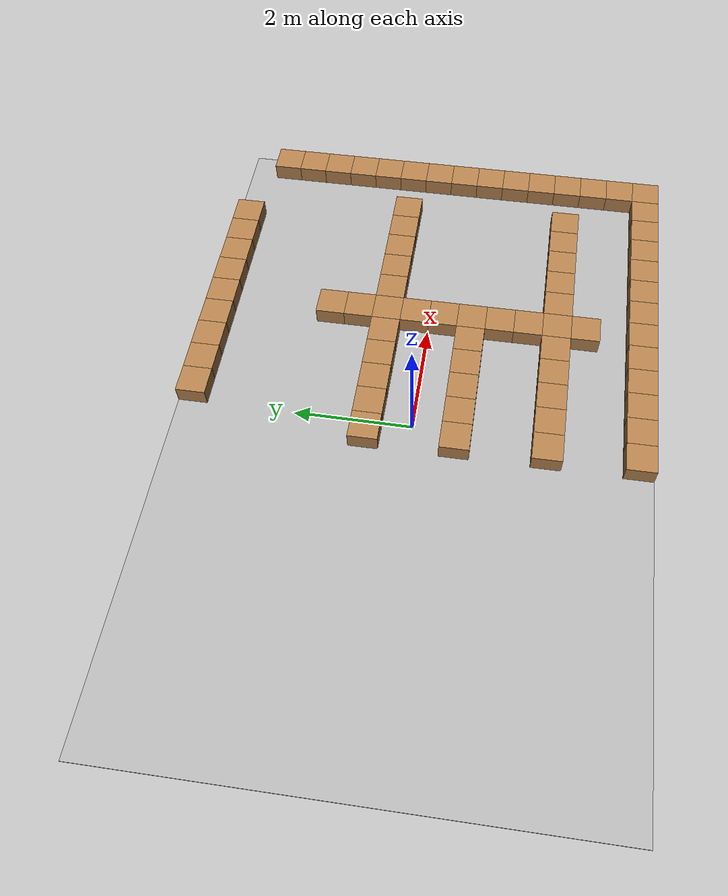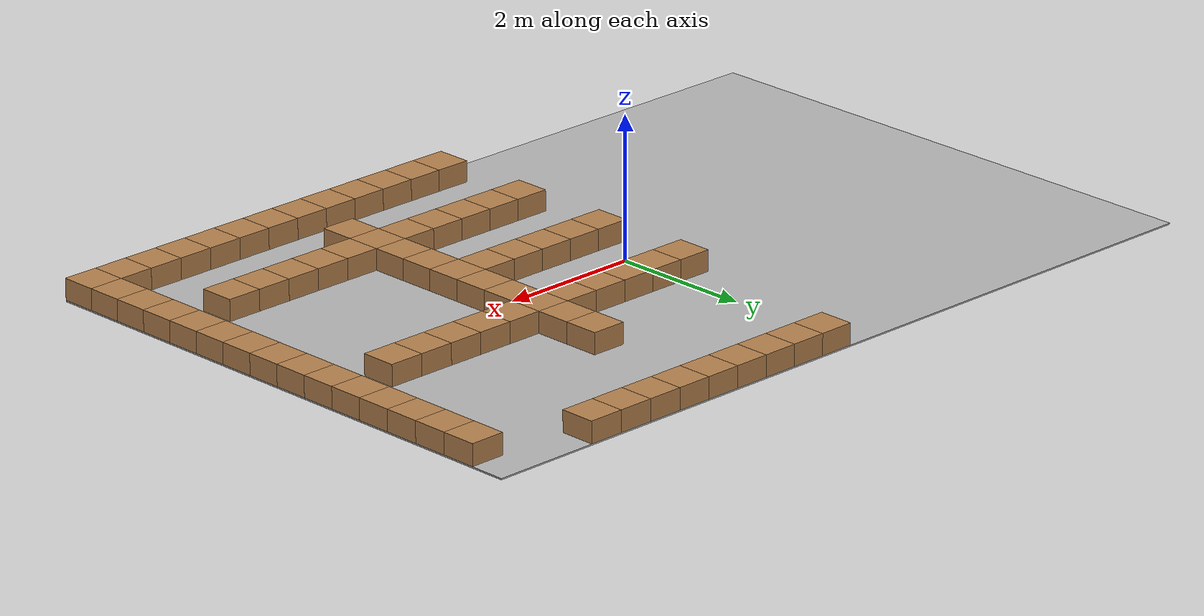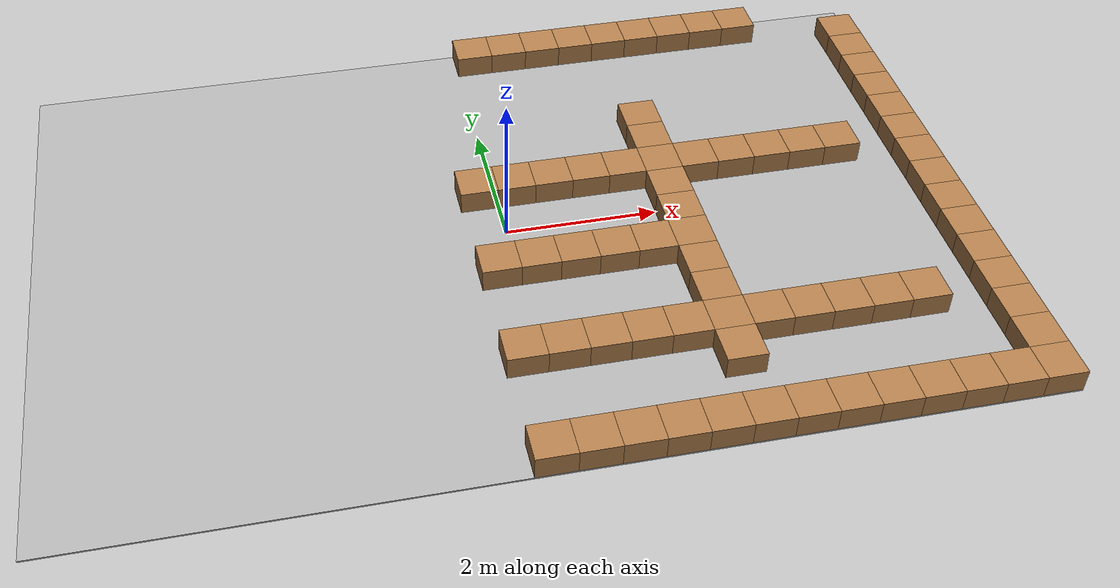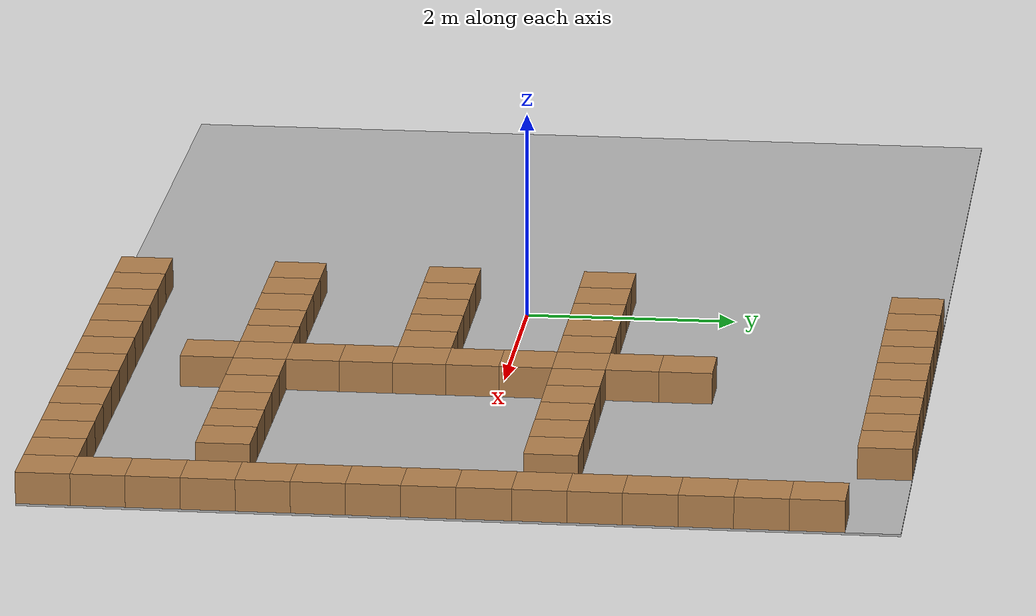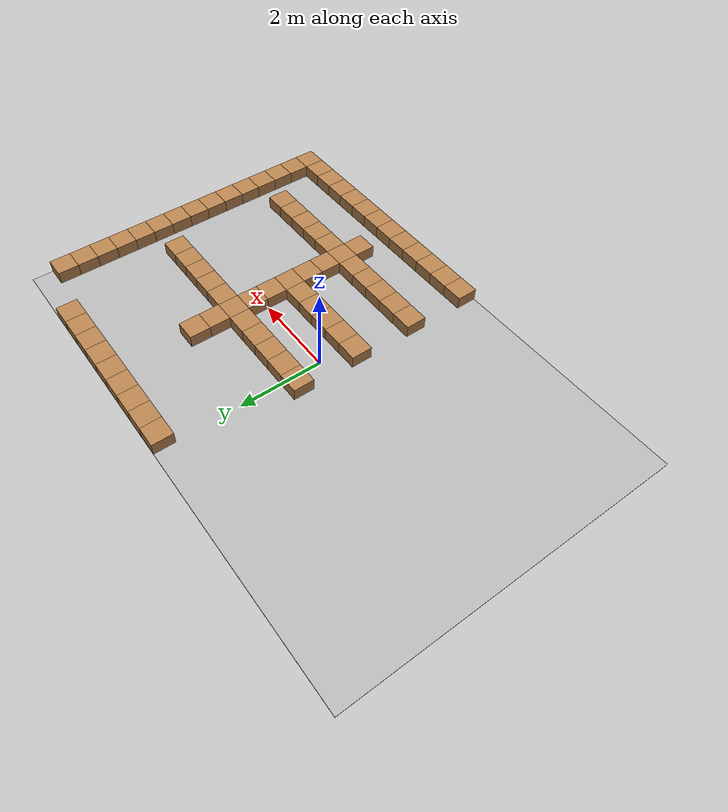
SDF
<sdf version="1.7">
 <world name="default">
  <model name="floor">
   <pose>0 0 -0.01 0 0 0</pose>
   <static>true</static>
   <link name="link">
    <collision name="col"><geometry><box><size>12.0 8.0 0.02</size></box></geometry></collision>
    <visual name="vis">
     <geometry><box><size>12.0 8.0 0.02</size></box></geometry>
     <material>
      <ambient>0.30 0.30 0.30 1</ambient>
      <diffuse>0.70 0.70 0.70 1</diffuse>
      <specular>0.10 0.10 0.10 1</specular>
     </material>
    </visual>
   </link>
  </model>
  <model name="tile_0_12">
   <pose>0.25 3.75 0.15 0 0 0</pose>
   <static>true</static>
   <link name="link">
    <collision name="col"><geometry><box><size>0.5 0.5 0.3</size></box></geometry></collision>
    <visual name="vis">
     <geometry><box><size>0.5 0.5 0.3</size></box></geometry>
     <material>
      <ambient>0.30 0.20 0.10 1</ambient>
      <diffuse>0.70 0.50 0.30 1</diffuse>
      <specular>0.10 0.10 0.10 1</specular>
     </material>
    </visual>
   </link>
  </model>
  <model name="tile_0_13">
   <pose>0.75 3.75 0.15 0 0 0</pose>
   <static>true</static>
   <link name="link">
    <collision name="col"><geometry><box><size>0.5 0.5 0.3</size></box></geometry></collision>
    <visual name="vis">
     <geometry><box><size>0.5 0.5 0.3</size></box></geometry>
     <material>
      <ambient>0.30 0.20 0.10 1</ambient>
      <diffuse>0.70 0.50 0.30 1</diffuse>
      <specular>0.10 0.10 0.10 1</specular>
     </material>
    </visual>
   </link>
  </model>
  <model name="tile_0_14">
   <pose>1.25 3.75 0.15 0 0 0</pose>
   <static>true</static>
   <link name="link">
    <collision name="col"><geometry><box><size>0.5 0.5 0.3</size></box></geometry></collision>
    <visual name="vis">
     <geometry><box><size>0.5 0.5 0.3</size></box></geometry>
     <material>
      <ambient>0.30 0.20 0.10 1</ambient>
      <diffuse>0.70 0.50 0.30 1</diffuse>
      <specular>0.10 0.10 0.10 1</specular>
     </material>
    </visual>
   </link>
  </model>
  <model name="tile_0_15">
   <pose>1.75 3.75 0.15 0 0 0</pose>
   <static>true</static>
   <link name="link">
    <collision name="col"><geometry><box><size>0.5 0.5 0.3</size></box></geometry></collision>
    <visual name="vis">
     <geometry><box><size>0.5 0.5 0.3</size></box></geometry>
     <material>
      <ambient>0.30 0.20 0.10 1</ambient>
      <diffuse>0.70 0.50 0.30 1</diffuse>
      <specular>0.10 0.10 0.10 1</specular>
     </material>
    </visual>
   </link>
  </model>
  <model name="tile_0_16">
   <pose>2.25 3.75 0.15 0 0 0</pose>
   <static>true</static>
   <link name="link">
    <collision name="col"><geometry><box><size>0.5 0.5 0.3</size></box></geometry></collision>
    <visual name="vis">
     <geometry><box><size>0.5 0.5 0.3</size></box></geometry>
     <material>
      <ambient>0.30 0.20 0.10 1</ambient>
      <diffuse>0.70 0.50 0.30 1</diffuse>
      <specular>0.10 0.10 0.10 1</specular>
     </material>
    </visual>
   </link>
  </model>
  <model name="tile_0_17">
   <pose>2.75 3.75 0.15 0 0 0</pose>
   <static>true</static>
   <link name="link">
    <collision name="col"><geometry><box><size>0.5 0.5 0.3</size></box></geometry></collision>
    <visual name="vis">
     <geometry><box><size>0.5 0.5 0.3</size></box></geometry>
     <material>
      <ambient>0.30 0.20 0.10 1</ambient>
      <diffuse>0.70 0.50 0.30 1</diffuse>
      <specular>0.10 0.10 0.10 1</specular>
     </material>
    </visual>
   </link>
  </model>
  <model name="tile_0_18">
   <pose>3.25 3.75 0.15 0 0 0</pose>
   <static>true</static>
   <link name="link">
    <collision name="col"><geometry><box><size>0.5 0.5 0.3</size></box></geometry></collision>
    <visual name="vis">
     <geometry><box><size>0.5 0.5 0.3</size></box></geometry>
     <material>
      <ambient>0.30 0.20 0.10 1</ambient>
      <diffuse>0.70 0.50 0.30 1</diffuse>
      <specular>0.10 0.10 0.10 1</specular>
     </material>
    </visual>
   </link>
  </model>
  <model name="tile_0_19">
   <pose>3.75 3.75 0.15 0 0 0</pose>
   <static>true</static>
   <link name="link">
    <collision name="col"><geometry><box><size>0.5 0.5 0.3</size></box></geometry></collision>
    <visual name="vis">
     <geometry><box><size>0.5 0.5 0.3</size></box></geometry>
     <material>
      <ambient>0.30 0.20 0.10 1</ambient>
      <diffuse>0.70 0.50 0.30 1</diffuse>
      <specular>0.10 0.10 0.10 1</specular>
     </material>
    </visual>
   </link>
  </model>
  <model name="tile_0_20">
   <pose>4.25 3.75 0.15 0 0 0</pose>
   <static>true</static>
   <link name="link">
    <collision name="col"><geometry><box><size>0.5 0.5 0.3</size></box></geometry></collision>
    <visual name="vis">
     <geometry><box><size>0.5 0.5 0.3</size></box></geometry>
     <material>
      <ambient>0.30 0.20 0.10 1</ambient>
      <diffuse>0.70 0.50 0.30 1</diffuse>
      <specular>0.10 0.10 0.10 1</specular>
     </material>
    </visual>
   </link>
  </model>
  <model name="tile_1_23">
   <pose>5.75 3.25 0.15 0 0 0</pose>
   <static>true</static>
   <link name="link">
    <collision name="col"><geometry><box><size>0.5 0.5 0.3</size></box></geometry></collision>
    <visual name="vis">
     <geometry><box><size>0.5 0.5 0.3</size></box></geometry>
     <material>
      <ambient>0.30 0.20 0.10 1</ambient>
      <diffuse>0.70 0.50 0.30 1</diffuse>
      <specular>0.10 0.10 0.10 1</specular>
     </material>
    </visual>
   </link>
  </model>
  <model name="tile_2_23">
   <pose>5.75 2.75 0.15 0 0 0</pose>
   <static>true</static>
   <link name="link">
    <collision name="col"><geometry><box><size>0.5 0.5 0.3</size></box></geometry></collision>
    <visual name="vis">
     <geometry><box><size>0.5 0.5 0.3</size></box></geometry>
     <material>
      <ambient>0.30 0.20 0.10 1</ambient>
      <diffuse>0.70 0.50 0.30 1</diffuse>
      <specular>0.10 0.10 0.10 1</specular>
     </material>
    </visual>
   </link>
  </model>
  <model name="tile_3_23">
   <pose>5.75 2.25 0.15 0 0 0</pose>
   <static>true</static>
   <link name="link">
    <collision name="col"><geometry><box><size>0.5 0.5 0.3</size></box></geometry></collision>
    <visual name="vis">
     <geometry><box><size>0.5 0.5 0.3</size></box></geometry>
     <material>
      <ambient>0.30 0.20 0.10 1</ambient>
      <diffuse>0.70 0.50 0.30 1</diffuse>
      <specular>0.10 0.10 0.10 1</specular>
     </material>
    </visual>
   </link>
  </model>
  <model name="tile_4_16">
   <pose>2.25 1.75 0.15 0 0 0</pose>
   <static>true</static>
   <link name="link">
    <collision name="col"><geometry><box><size>0.5 0.5 0.3</size></box></geometry></collision>
    <visual name="vis">
     <geometry><box><size>0.5 0.5 0.3</size></box></geometry>
     <material>
      <ambient>0.30 0.20 0.10 1</ambient>
      <diffuse>0.70 0.50 0.30 1</diffuse>
      <specular>0.10 0.10 0.10 1</specular>
     </material>
    </visual>
   </link>
  </model>
  <model name="tile_4_23">
   <pose>5.75 1.75 0.15 0 0 0</pose>
   <static>true</static>
   <link name="link">
    <collision name="col"><geometry><box><size>0.5 0.5 0.3</size></box></geometry></collision>
    <visual name="vis">
     <geometry><box><size>0.5 0.5 0.3</size></box></geometry>
     <material>
      <ambient>0.30 0.20 0.10 1</ambient>
      <diffuse>0.70 0.50 0.30 1</diffuse>
      <specular>0.10 0.10 0.10 1</specular>
     </material>
    </visual>
   </link>
  </model>
  <model name="tile_5_16">
   <pose>2.25 1.25 0.15 0 0 0</pose>
   <static>true</static>
   <link name="link">
    <collision name="col"><geometry><box><size>0.5 0.5 0.3</size></box></geometry></collision>
    <visual name="vis">
     <geometry><box><size>0.5 0.5 0.3</size></box></geometry>
     <material>
      <ambient>0.30 0.20 0.10 1</ambient>
      <diffuse>0.70 0.50 0.30 1</diffuse>
      <specular>0.10 0.10 0.10 1</specular>
     </material>
    </visual>
   </link>
  </model>
  <model name="tile_5_23">
   <pose>5.75 1.25 0.15 0 0 0</pose>
   <static>true</static>
   <link name="link">
    <collision name="col"><geometry><box><size>0.5 0.5 0.3</size></box></geometry></collision>
    <visual name="vis">
     <geometry><box><size>0.5 0.5 0.3</size></box></geometry>
     <material>
      <ambient>0.30 0.20 0.10 1</ambient>
      <diffuse>0.70 0.50 0.30 1</diffuse>
      <specular>0.10 0.10 0.10 1</specular>
     </material>
    </visual>
   </link>
  </model>
  <model name="tile_6_11">
   <pose>-0.25 0.75 0.15 0 0 0</pose>
   <static>true</static>
   <link name="link">
    <collision name="col"><geometry><box><size>0.5 0.5 0.3</size></box></geometry></collision>
    <visual name="vis">
     <geometry><box><size>0.5 0.5 0.3</size></box></geometry>
     <material>
      <ambient>0.30 0.20 0.10 1</ambient>
      <diffuse>0.70 0.50 0.30 1</diffuse>
      <specular>0.10 0.10 0.10 1</specular>
     </material>
    </visual>
   </link>
  </model>
  <model name="tile_6_12">
   <pose>0.25 0.75 0.15 0 0 0</pose>
   <static>true</static>
   <link name="link">
    <collision name="col"><geometry><box><size>0.5 0.5 0.3</size></box></geometry></collision>
    <visual name="vis">
     <geometry><box><size>0.5 0.5 0.3</size></box></geometry>
     <material>
      <ambient>0.30 0.20 0.10 1</ambient>
      <diffuse>0.70 0.50 0.30 1</diffuse>
      <specular>0.10 0.10 0.10 1</specular>
     </material>
    </visual>
   </link>
  </model>
  <model name="tile_6_13">
   <pose>0.75 0.75 0.15 0 0 0</pose>
   <static>true</static>
   <link name="link">
    <collision name="col"><geometry><box><size>0.5 0.5 0.3</size></box></geometry></collision>
    <visual name="vis">
     <geometry><box><size>0.5 0.5 0.3</size></box></geometry>
     <material>
      <ambient>0.30 0.20 0.10 1</ambient>
      <diffuse>0.70 0.50 0.30 1</diffuse>
      <specular>0.10 0.10 0.10 1</specular>
     </material>
    </visual>
   </link>
  </model>
  <model name="tile_6_14">
   <pose>1.25 0.75 0.15 0 0 0</pose>
   <static>true</static>
   <link name="link">
    <collision name="col"><geometry><box><size>0.5 0.5 0.3</size></box></geometry></collision>
    <visual name="vis">
     <geometry><box><size>0.5 0.5 0.3</size></box></geometry>
     <material>
      <ambient>0.30 0.20 0.10 1</ambient>
      <diffuse>0.70 0.50 0.30 1</diffuse>
      <specular>0.10 0.10 0.10 1</specular>
     </material>
    </visual>
   </link>
  </model>
  <model name="tile_6_15">
   <pose>1.75 0.75 0.15 0 0 0</pose>
   <static>true</static>
   <link name="link">
    <collision name="col"><geometry><box><size>0.5 0.5 0.3</size></box></geometry></collision>
    <visual name="vis">
     <geometry><box><size>0.5 0.5 0.3</size></box></geometry>
     <material>
      <ambient>0.30 0.20 0.10 1</ambient>
      <diffuse>0.70 0.50 0.30 1</diffuse>
      <specular>0.10 0.10 0.10 1</specular>
     </material>
    </visual>
   </link>
  </model>
  <model name="tile_6_16">
   <pose>2.25 0.75 0.15 0 0 0</pose>
   <static>true</static>
   <link name="link">
    <collision name="col"><geometry><box><size>0.5 0.5 0.3</size></box></geometry></collision>
    <visual name="vis">
     <geometry><box><size>0.5 0.5 0.3</size></box></geometry>
     <material>
      <ambient>0.30 0.20 0.10 1</ambient>
      <diffuse>0.70 0.50 0.30 1</diffuse>
      <specular>0.10 0.10 0.10 1</specular>
     </material>
    </visual>
   </link>
  </model>
  <model name="tile_6_17">
   <pose>2.75 0.75 0.15 0 0 0</pose>
   <static>true</static>
   <link name="link">
    <collision name="col"><geometry><box><size>0.5 0.5 0.3</size></box></geometry></collision>
    <visual name="vis">
     <geometry><box><size>0.5 0.5 0.3</size></box></geometry>
     <material>
      <ambient>0.30 0.20 0.10 1</ambient>
      <diffuse>0.70 0.50 0.30 1</diffuse>
      <specular>0.10 0.10 0.10 1</specular>
     </material>
    </visual>
   </link>
  </model>
  <model name="tile_6_18">
   <pose>3.25 0.75 0.15 0 0 0</pose>
   <static>true</static>
   <link name="link">
    <collision name="col"><geometry><box><size>0.5 0.5 0.3</size></box></geometry></collision>
    <visual name="vis">
     <geometry><box><size>0.5 0.5 0.3</size></box></geometry>
     <material>
      <ambient>0.30 0.20 0.10 1</ambient>
      <diffuse>0.70 0.50 0.30 1</diffuse>
      <specular>0.10 0.10 0.10 1</specular>
     </material>
    </visual>
   </link>
  </model>
  <model name="tile_6_19">
   <pose>3.75 0.75 0.15 0 0 0</pose>
   <static>true</static>
   <link name="link">
    <collision name="col"><geometry><box><size>0.5 0.5 0.3</size></box></geometry></collision>
    <visual name="vis">
     <geometry><box><size>0.5 0.5 0.3</size></box></geometry>
     <material>
      <ambient>0.30 0.20 0.10 1</ambient>
      <diffuse>0.70 0.50 0.30 1</diffuse>
      <specular>0.10 0.10 0.10 1</specular>
     </material>
    </visual>
   </link>
  </model>
  <model name="tile_6_20">
   <pose>4.25 0.75 0.15 0 0 0</pose>
   <static>true</static>
   <link name="link">
    <collision name="col"><geometry><box><size>0.5 0.5 0.3</size></box></geometry></collision>
    <visual name="vis">
     <geometry><box><size>0.5 0.5 0.3</size></box></geometry>
     <material>
      <ambient>0.30 0.20 0.10 1</ambient>
      <diffuse>0.70 0.50 0.30 1</diffuse>
      <specular>0.10 0.10 0.10 1</specular>
     </material>
    </visual>
   </link>
  </model>
  <model name="tile_6_21">
   <pose>4.75 0.75 0.15 0 0 0</pose>
   <static>true</static>
   <link name="link">
    <collision name="col"><geometry><box><size>0.5 0.5 0.3</size></box></geometry></collision>
    <visual name="vis">
     <geometry><box><size>0.5 0.5 0.3</size></box></geometry>
     <material>
      <ambient>0.30 0.20 0.10 1</ambient>
      <diffuse>0.70 0.50 0.30 1</diffuse>
      <specular>0.10 0.10 0.10 1</specular>
     </material>
    </visual>
   </link>
  </model>
  <model name="tile_6_23">
   <pose>5.75 0.75 0.15 0 0 0</pose>
   <static>true</static>
   <link name="link">
    <collision name="col"><geometry><box><size>0.5 0.5 0.3</size></box></geometry></collision>
    <visual name="vis">
     <geometry><box><size>0.5 0.5 0.3</size></box></geometry>
     <material>
      <ambient>0.30 0.20 0.10 1</ambient>
      <diffuse>0.70 0.50 0.30 1</diffuse>
      <specular>0.10 0.10 0.10 1</specular>
     </material>
    </visual>
   </link>
  </model>
  <model name="tile_7_16">
   <pose>2.25 0.25 0.15 0 0 0</pose>
   <static>true</static>
   <link name="link">
    <collision name="col"><geometry><box><size>0.5 0.5 0.3</size></box></geometry></collision>
    <visual name="vis">
     <geometry><box><size>0.5 0.5 0.3</size></box></geometry>
     <material>
      <ambient>0.30 0.20 0.10 1</ambient>
      <diffuse>0.70 0.50 0.30 1</diffuse>
      <specular>0.10 0.10 0.10 1</specular>
     </material>
    </visual>
   </link>
  </model>
  <model name="tile_7_23">
   <pose>5.75 0.25 0.15 0 0 0</pose>
   <static>true</static>
   <link name="link">
    <collision name="col"><geometry><box><size>0.5 0.5 0.3</size></box></geometry></collision>
    <visual name="vis">
     <geometry><box><size>0.5 0.5 0.3</size></box></geometry>
     <material>
      <ambient>0.30 0.20 0.10 1</ambient>
      <diffuse>0.70 0.50 0.30 1</diffuse>
      <specular>0.10 0.10 0.10 1</specular>
     </material>
    </visual>
   </link>
  </model>
  <model name="tile_8_16">
   <pose>2.25 -0.25 0.15 0 0 0</pose>
   <static>true</static>
   <link name="link">
    <collision name="col"><geometry><box><size>0.5 0.5 0.3</size></box></geometry></collision>
    <visual name="vis">
     <geometry><box><size>0.5 0.5 0.3</size></box></geometry>
     <material>
      <ambient>0.30 0.20 0.10 1</ambient>
      <diffuse>0.70 0.50 0.30 1</diffuse>
      <specular>0.10 0.10 0.10 1</specular>
     </material>
    </visual>
   </link>
  </model>
  <model name="tile_8_23">
   <pose>5.75 -0.25 0.15 0 0 0</pose>
   <static>true</static>
   <link name="link">
    <collision name="col"><geometry><box><size>0.5 0.5 0.3</size></box></geometry></collision>
    <visual name="vis">
     <geometry><box><size>0.5 0.5 0.3</size></box></geometry>
     <material>
      <ambient>0.30 0.20 0.10 1</ambient>
      <diffuse>0.70 0.50 0.30 1</diffuse>
      <specular>0.10 0.10 0.10 1</specular>
     </material>
    </visual>
   </link>
  </model>
  <model name="tile_9_11">
   <pose>-0.25 -0.75 0.15 0 0 0</pose>
   <static>true</static>
   <link name="link">
    <collision name="col"><geometry><box><size>0.5 0.5 0.3</size></box></geometry></collision>
    <visual name="vis">
     <geometry><box><size>0.5 0.5 0.3</size></box></geometry>
     <material>
      <ambient>0.30 0.20 0.10 1</ambient>
      <diffuse>0.70 0.50 0.30 1</diffuse>
      <specular>0.10 0.10 0.10 1</specular>
     </material>
    </visual>
   </link>
  </model>
  <model name="tile_9_12">
   <pose>0.25 -0.75 0.15 0 0 0</pose>
   <static>true</static>
   <link name="link">
    <collision name="col"><geometry><box><size>0.5 0.5 0.3</size></box></geometry></collision>
    <visual name="vis">
     <geometry><box><size>0.5 0.5 0.3</size></box></geometry>
     <material>
      <ambient>0.30 0.20 0.10 1</ambient>
      <diffuse>0.70 0.50 0.30 1</diffuse>
      <specular>0.10 0.10 0.10 1</specular>
     </material>
    </visual>
   </link>
  </model>
  <model name="tile_9_13">
   <pose>0.75 -0.75 0.15 0 0 0</pose>
   <static>true</static>
   <link name="link">
    <collision name="col"><geometry><box><size>0.5 0.5 0.3</size></box></geometry></collision>
    <visual name="vis">
     <geometry><box><size>0.5 0.5 0.3</size></box></geometry>
     <material>
      <ambient>0.30 0.20 0.10 1</ambient>
      <diffuse>0.70 0.50 0.30 1</diffuse>
      <specular>0.10 0.10 0.10 1</specular>
     </material>
    </visual>
   </link>
  </model>
  <model name="tile_9_14">
   <pose>1.25 -0.75 0.15 0 0 0</pose>
   <static>true</static>
   <link name="link">
    <collision name="col"><geometry><box><size>0.5 0.5 0.3</size></box></geometry></collision>
    <visual name="vis">
     <geometry><box><size>0.5 0.5 0.3</size></box></geometry>
     <material>
      <ambient>0.30 0.20 0.10 1</ambient>
      <diffuse>0.70 0.50 0.30 1</diffuse>
      <specular>0.10 0.10 0.10 1</specular>
     </material>
    </visual>
   </link>
  </model>
  <model name="tile_9_15">
   <pose>1.75 -0.75 0.15 0 0 0</pose>
   <static>true</static>
   <link name="link">
    <collision name="col"><geometry><box><size>0.5 0.5 0.3</size></box></geometry></collision>
    <visual name="vis">
     <geometry><box><size>0.5 0.5 0.3</size></box></geometry>
     <material>
      <ambient>0.30 0.20 0.10 1</ambient>
      <diffuse>0.70 0.50 0.30 1</diffuse>
      <specular>0.10 0.10 0.10 1</specular>
     </material>
    </visual>
   </link>
  </model>
  <model name="tile_9_16">
   <pose>2.25 -0.75 0.15 0 0 0</pose>
   <static>true</static>
   <link name="link">
    <collision name="col"><geometry><box><size>0.5 0.5 0.3</size></box></geometry></collision>
    <visual name="vis">
     <geometry><box><size>0.5 0.5 0.3</size></box></geometry>
     <material>
      <ambient>0.30 0.20 0.10 1</ambient>
      <diffuse>0.70 0.50 0.30 1</diffuse>
      <specular>0.10 0.10 0.10 1</specular>
     </material>
    </visual>
   </link>
  </model>
  <model name="tile_9_23">
   <pose>5.75 -0.75 0.15 0 0 0</pose>
   <static>true</static>
   <link name="link">
    <collision name="col"><geometry><box><size>0.5 0.5 0.3</size></box></geometry></collision>
    <visual name="vis">
     <geometry><box><size>0.5 0.5 0.3</size></box></geometry>
     <material>
      <ambient>0.30 0.20 0.10 1</ambient>
      <diffuse>0.70 0.50 0.30 1</diffuse>
      <specular>0.10 0.10 0.10 1</specular>
     </material>
    </visual>
   </link>
  </model>
  <model name="tile_10_16">
   <pose>2.25 -1.25 0.15 0 0 0</pose>
   <static>true</static>
   <link name="link">
    <collision name="col"><geometry><box><size>0.5 0.5 0.3</size></box></geometry></collision>
    <visual name="vis">
     <geometry><box><size>0.5 0.5 0.3</size></box></geometry>
     <material>
      <ambient>0.30 0.20 0.10 1</ambient>
      <diffuse>0.70 0.50 0.30 1</diffuse>
      <specular>0.10 0.10 0.10 1</specular>
     </material>
    </visual>
   </link>
  </model>
  <model name="tile_10_23">
   <pose>5.75 -1.25 0.15 0 0 0</pose>
   <static>true</static>
   <link name="link">
    <collision name="col"><geometry><box><size>0.5 0.5 0.3</size></box></geometry></collision>
    <visual name="vis">
     <geometry><box><size>0.5 0.5 0.3</size></box></geometry>
     <material>
      <ambient>0.30 0.20 0.10 1</ambient>
      <diffuse>0.70 0.50 0.30 1</diffuse>
      <specular>0.10 0.10 0.10 1</specular>
     </material>
    </visual>
   </link>
  </model>
  <model name="tile_11_16">
   <pose>2.25 -1.75 0.15 0 0 0</pose>
   <static>true</static>
   <link name="link">
    <collision name="col"><geometry><box><size>0.5 0.5 0.3</size></box></geometry></collision>
    <visual name="vis">
     <geometry><box><size>0.5 0.5 0.3</size></box></geometry>
     <material>
      <ambient>0.30 0.20 0.10 1</ambient>
      <diffuse>0.70 0.50 0.30 1</diffuse>
      <specular>0.10 0.10 0.10 1</specular>
     </material>
    </visual>
   </link>
  </model>
  <model name="tile_11_23">
   <pose>5.75 -1.75 0.15 0 0 0</pose>
   <static>true</static>
   <link name="link">
    <collision name="col"><geometry><box><size>0.5 0.5 0.3</size></box></geometry></collision>
    <visual name="vis">
     <geometry><box><size>0.5 0.5 0.3</size></box></geometry>
     <material>
      <ambient>0.30 0.20 0.10 1</ambient>
      <diffuse>0.70 0.50 0.30 1</diffuse>
      <specular>0.10 0.10 0.10 1</specular>
     </material>
    </visual>
   </link>
  </model>
  <model name="tile_12_11">
   <pose>-0.25 -2.25 0.15 0 0 0</pose>
   <static>true</static>
   <link name="link">
    <collision name="col"><geometry><box><size>0.5 0.5 0.3</size></box></geometry></collision>
    <visual name="vis">
     <geometry><box><size>0.5 0.5 0.3</size></box></geometry>
     <material>
      <ambient>0.30 0.20 0.10 1</ambient>
      <diffuse>0.70 0.50 0.30 1</diffuse>
      <specular>0.10 0.10 0.10 1</specular>
     </material>
    </visual>
   </link>
  </model>
  <model name="tile_12_12">
   <pose>0.25 -2.25 0.15 0 0 0</pose>
   <static>true</static>
   <link name="link">
    <collision name="col"><geometry><box><size>0.5 0.5 0.3</size></box></geometry></collision>
    <visual name="vis">
     <geometry><box><size>0.5 0.5 0.3</size></box></geometry>
     <material>
      <ambient>0.30 0.20 0.10 1</ambient>
      <diffuse>0.70 0.50 0.30 1</diffuse>
      <specular>0.10 0.10 0.10 1</specular>
     </material>
    </visual>
   </link>
  </model>
  <model name="tile_12_13">
   <pose>0.75 -2.25 0.15 0 0 0</pose>
   <static>true</static>
   <link name="link">
    <collision name="col"><geometry><box><size>0.5 0.5 0.3</size></box></geometry></collision>
    <visual name="vis">
     <geometry><box><size>0.5 0.5 0.3</size></box></geometry>
     <material>
      <ambient>0.30 0.20 0.10 1</ambient>
      <diffuse>0.70 0.50 0.30 1</diffuse>
      <specular>0.10 0.10 0.10 1</specular>
     </material>
    </visual>
   </link>
  </model>
  <model name="tile_12_14">
   <pose>1.25 -2.25 0.15 0 0 0</pose>
   <static>true</static>
   <link name="link">
    <collision name="col"><geometry><box><size>0.5 0.5 0.3</size></box></geometry></collision>
    <visual name="vis">
     <geometry><box><size>0.5 0.5 0.3</size></box></geometry>
     <material>
      <ambient>0.30 0.20 0.10 1</ambient>
      <diffuse>0.70 0.50 0.30 1</diffuse>
      <specular>0.10 0.10 0.10 1</specular>
     </material>
    </visual>
   </link>
  </model>
  <model name="tile_12_15">
   <pose>1.75 -2.25 0.15 0 0 0</pose>
   <static>true</static>
   <link name="link">
    <collision name="col"><geometry><box><size>0.5 0.5 0.3</size></box></geometry></collision>
    <visual name="vis">
     <geometry><box><size>0.5 0.5 0.3</size></box></geometry>
     <material>
      <ambient>0.30 0.20 0.10 1</ambient>
      <diffuse>0.70 0.50 0.30 1</diffuse>
      <specular>0.10 0.10 0.10 1</specular>
     </material>
    </visual>
   </link>
  </model>
  <model name="tile_12_16">
   <pose>2.25 -2.25 0.15 0 0 0</pose>
   <static>true</static>
   <link name="link">
    <collision name="col"><geometry><box><size>0.5 0.5 0.3</size></box></geometry></collision>
    <visual name="vis">
     <geometry><box><size>0.5 0.5 0.3</size></box></geometry>
     <material>
      <ambient>0.30 0.20 0.10 1</ambient>
      <diffuse>0.70 0.50 0.30 1</diffuse>
      <specular>0.10 0.10 0.10 1</specular>
     </material>
    </visual>
   </link>
  </model>
  <model name="tile_12_17">
   <pose>2.75 -2.25 0.15 0 0 0</pose>
   <static>true</static>
   <link name="link">
    <collision name="col"><geometry><box><size>0.5 0.5 0.3</size></box></geometry></collision>
    <visual name="vis">
     <geometry><box><size>0.5 0.5 0.3</size></box></geometry>
     <material>
      <ambient>0.30 0.20 0.10 1</ambient>
      <diffuse>0.70 0.50 0.30 1</diffuse>
      <specular>0.10 0.10 0.10 1</specular>
     </material>
    </visual>
   </link>
  </model>
  <model name="tile_12_18">
   <pose>3.25 -2.25 0.15 0 0 0</pose>
   <static>true</static>
   <link name="link">
    <collision name="col"><geometry><box><size>0.5 0.5 0.3</size></box></geometry></collision>
    <visual name="vis">
     <geometry><box><size>0.5 0.5 0.3</size></box></geometry>
     <material>
      <ambient>0.30 0.20 0.10 1</ambient>
      <diffuse>0.70 0.50 0.30 1</diffuse>
      <specular>0.10 0.10 0.10 1</specular>
     </material>
    </visual>
   </link>
  </model>
  <model name="tile_12_19">
   <pose>3.75 -2.25 0.15 0 0 0</pose>
   <static>true</static>
   <link name="link">
    <collision name="col"><geometry><box><size>0.5 0.5 0.3</size></box></geometry></collision>
    <visual name="vis">
     <geometry><box><size>0.5 0.5 0.3</size></box></geometry>
     <material>
      <ambient>0.30 0.20 0.10 1</ambient>
      <diffuse>0.70 0.50 0.30 1</diffuse>
      <specular>0.10 0.10 0.10 1</specular>
     </material>
    </visual>
   </link>
  </model>
  <model name="tile_12_20">
   <pose>4.25 -2.25 0.15 0 0 0</pose>
   <static>true</static>
   <link name="link">
    <collision name="col"><geometry><box><size>0.5 0.5 0.3</size></box></geometry></collision>
    <visual name="vis">
     <geometry><box><size>0.5 0.5 0.3</size></box></geometry>
     <material>
      <ambient>0.30 0.20 0.10 1</ambient>
      <diffuse>0.70 0.50 0.30 1</diffuse>
      <specular>0.10 0.10 0.10 1</specular>
     </material>
    </visual>
   </link>
  </model>
  <model name="tile_12_21">
   <pose>4.75 -2.25 0.15 0 0 0</pose>
   <static>true</static>
   <link name="link">
    <collision name="col"><geometry><box><size>0.5 0.5 0.3</size></box></geometry></collision>
    <visual name="vis">
     <geometry><box><size>0.5 0.5 0.3</size></box></geometry>
     <material>
      <ambient>0.30 0.20 0.10 1</ambient>
      <diffuse>0.70 0.50 0.30 1</diffuse>
      <specular>0.10 0.10 0.10 1</specular>
     </material>
    </visual>
   </link>
  </model>
  <model name="tile_12_23">
   <pose>5.75 -2.25 0.15 0 0 0</pose>
   <static>true</static>
   <link name="link">
    <collision name="col"><geometry><box><size>0.5 0.5 0.3</size></box></geometry></collision>
    <visual name="vis">
     <geometry><box><size>0.5 0.5 0.3</size></box></geometry>
     <material>
      <ambient>0.30 0.20 0.10 1</ambient>
      <diffuse>0.70 0.50 0.30 1</diffuse>
      <specular>0.10 0.10 0.10 1</specular>
     </material>
    </visual>
   </link>
  </model>
  <model name="tile_13_16">
   <pose>2.25 -2.75 0.15 0 0 0</pose>
   <static>true</static>
   <link name="link">
    <collision name="col"><geometry><box><size>0.5 0.5 0.3</size></box></geometry></collision>
    <visual name="vis">
     <geometry><box><size>0.5 0.5 0.3</size></box></geometry>
     <material>
      <ambient>0.30 0.20 0.10 1</ambient>
      <diffuse>0.70 0.50 0.30 1</diffuse>
      <specular>0.10 0.10 0.10 1</specular>
     </material>
    </visual>
   </link>
  </model>
  <model name="tile_13_23">
   <pose>5.75 -2.75 0.15 0 0 0</pose>
   <static>true</static>
   <link name="link">
    <collision name="col"><geometry><box><size>0.5 0.5 0.3</size></box></geometry></collision>
    <visual name="vis">
     <geometry><box><size>0.5 0.5 0.3</size></box></geometry>
     <material>
      <ambient>0.30 0.20 0.10 1</ambient>
      <diffuse>0.70 0.50 0.30 1</diffuse>
      <specular>0.10 0.10 0.10 1</specular>
     </material>
    </visual>
   </link>
  </model>
  <model name="tile_14_23">
   <pose>5.75 -3.25 0.15 0 0 0</pose>
   <static>true</static>
   <link name="link">
    <collision name="col"><geometry><box><size>0.5 0.5 0.3</size></box></geometry></collision>
    <visual name="vis">
     <geometry><box><size>0.5 0.5 0.3</size></box></geometry>
     <material>
      <ambient>0.30 0.20 0.10 1</ambient>
      <diffuse>0.70 0.50 0.30 1</diffuse>
      <specular>0.10 0.10 0.10 1</specular>
     </material>
    </visual>
   </link>
  </model>
  <model name="tile_15_11">
   <pose>-0.25 -3.75 0.15 0 0 0</pose>
   <static>true</static>
   <link name="link">
    <collision name="col"><geometry><box><size>0.5 0.5 0.3</size></box></geometry></collision>
    <visual name="vis">
     <geometry><box><size>0.5 0.5 0.3</size></box></geometry>
     <material>
      <ambient>0.30 0.20 0.10 1</ambient>
      <diffuse>0.70 0.50 0.30 1</diffuse>
      <specular>0.10 0.10 0.10 1</specular>
     </material>
    </visual>
   </link>
  </model>
  <model name="tile_15_12">
   <pose>0.25 -3.75 0.15 0 0 0</pose>
   <static>true</static>
   <link name="link">
    <collision name="col"><geometry><box><size>0.5 0.5 0.3</size></box></geometry></collision>
    <visual name="vis">
     <geometry><box><size>0.5 0.5 0.3</size></box></geometry>
     <material>
      <ambient>0.30 0.20 0.10 1</ambient>
      <diffuse>0.70 0.50 0.30 1</diffuse>
      <specular>0.10 0.10 0.10 1</specular>
     </material>
    </visual>
   </link>
  </model>
  <model name="tile_15_13">
   <pose>0.75 -3.75 0.15 0 0 0</pose>
   <static>true</static>
   <link name="link">
    <collision name="col"><geometry><box><size>0.5 0.5 0.3</size></box></geometry></collision>
    <visual name="vis">
     <geometry><box><size>0.5 0.5 0.3</size></box></geometry>
     <material>
      <ambient>0.30 0.20 0.10 1</ambient>
      <diffuse>0.70 0.50 0.30 1</diffuse>
      <specular>0.10 0.10 0.10 1</specular>
     </material>
    </visual>
   </link>
  </model>
  <model name="tile_15_14">
   <pose>1.25 -3.75 0.15 0 0 0</pose>
   <static>true</static>
   <link name="link">
    <collision name="col"><geometry><box><size>0.5 0.5 0.3</size></box></geometry></collision>
    <visual name="vis">
     <geometry><box><size>0.5 0.5 0.3</size></box></geometry>
     <material>
      <ambient>0.30 0.20 0.10 1</ambient>
      <diffuse>0.70 0.50 0.30 1</diffuse>
      <specular>0.10 0.10 0.10 1</specular>
     </material>
    </visual>
   </link>
  </model>
  <model name="tile_15_15">
   <pose>1.75 -3.75 0.15 0 0 0</pose>
   <static>true</static>
   <link name="link">
    <collision name="col"><geometry><box><size>0.5 0.5 0.3</size></box></geometry></collision>
    <visual name="vis">
     <geometry><box><size>0.5 0.5 0.3</size></box></geometry>
     <material>
      <ambient>0.30 0.20 0.10 1</ambient>
      <diffuse>0.70 0.50 0.30 1</diffuse>
      <specular>0.10 0.10 0.10 1</specular>
     </material>
    </visual>
   </link>
  </model>
  <model name="tile_15_16">
   <pose>2.25 -3.75 0.15 0 0 0</pose>
   <static>true</static>
   <link name="link">
    <collision name="col"><geometry><box><size>0.5 0.5 0.3</size></box></geometry></collision>
    <visual name="vis">
     <geometry><box><size>0.5 0.5 0.3</size></box></geometry>
     <material>
      <ambient>0.30 0.20 0.10 1</ambient>
      <diffuse>0.70 0.50 0.30 1</diffuse>
      <specular>0.10 0.10 0.10 1</specular>
     </material>
    </visual>
   </link>
  </model>
  <model name="tile_15_17">
   <pose>2.75 -3.75 0.15 0 0 0</pose>
   <static>true</static>
   <link name="link">
    <collision name="col"><geometry><box><size>0.5 0.5 0.3</size></box></geometry></collision>
    <visual name="vis">
     <geometry><box><size>0.5 0.5 0.3</size></box></geometry>
     <material>
      <ambient>0.30 0.20 0.10 1</ambient>
      <diffuse>0.70 0.50 0.30 1</diffuse>
      <specular>0.10 0.10 0.10 1</specular>
     </material>
    </visual>
   </link>
  </model>
  <model name="tile_15_18">
   <pose>3.25 -3.75 0.15 0 0 0</pose>
   <static>true</static>
   <link name="link">
    <collision name="col"><geometry><box><size>0.5 0.5 0.3</size></box></geometry></collision>
    <visual name="vis">
     <geometry><box><size>0.5 0.5 0.3</size></box></geometry>
     <material>
      <ambient>0.30 0.20 0.10 1</ambient>
      <diffuse>0.70 0.50 0.30 1</diffuse>
      <specular>0.10 0.10 0.10 1</specular>
     </material>
    </visual>
   </link>
  </model>
  <model name="tile_15_19">
   <pose>3.75 -3.75 0.15 0 0 0</pose>
   <static>true</static>
   <link name="link">
    <collision name="col"><geometry><box><size>0.5 0.5 0.3</size></box></geometry></collision>
    <visual name="vis">
     <geometry><box><size>0.5 0.5 0.3</size></box></geometry>
     <material>
      <ambient>0.30 0.20 0.10 1</ambient>
      <diffuse>0.70 0.50 0.30 1</diffuse>
      <specular>0.10 0.10 0.10 1</specular>
     </material>
    </visual>
   </link>
  </model>
  <model name="tile_15_20">
   <pose>4.25 -3.75 0.15 0 0 0</pose>
   <static>true</static>
   <link name="link">
    <collision name="col"><geometry><box><size>0.5 0.5 0.3</size></box></geometry></collision>
    <visual name="vis">
     <geometry><box><size>0.5 0.5 0.3</size></box></geometry>
     <material>
      <ambient>0.30 0.20 0.10 1</ambient>
      <diffuse>0.70 0.50 0.30 1</diffuse>
      <specular>0.10 0.10 0.10 1</specular>
     </material>
    </visual>
   </link>
  </model>
  <model name="tile_15_21">
   <pose>4.75 -3.75 0.15 0 0 0</pose>
   <static>true</static>
   <link name="link">
    <collision name="col"><geometry><box><size>0.5 0.5 0.3</size></box></geometry></collision>
    <visual name="vis">
     <geometry><box><size>0.5 0.5 0.3</size></box></geometry>
     <material>
      <ambient>0.30 0.20 0.10 1</ambient>
      <diffuse>0.70 0.50 0.30 1</diffuse>
      <specular>0.10 0.10 0.10 1</specular>
     </material>
    </visual>
   </link>
  </model>
  <model name="tile_15_22">
   <pose>5.25 -3.75 0.15 0 0 0</pose>
   <static>true</static>
   <link name="link">
    <collision name="col"><geometry><box><size>0.5 0.5 0.3</size></box></geometry></collision>
    <visual name="vis">
     <geometry><box><size>0.5 0.5 0.3</size></box></geometry>
     <material>
      <ambient>0.30 0.20 0.10 1</ambient>
      <diffuse>0.70 0.50 0.30 1</diffuse>
      <specular>0.10 0.10 0.10 1</specular>
     </material>
    </visual>
   </link>
  </model>
  <model name="tile_15_23">
   <pose>5.75 -3.75 0.15 0 0 0</pose>
   <static>true</static>
   <link name="link">
    <collision name="col"><geometry><box><size>0.5 0.5 0.3</size></box></geometry></collision>
    <visual name="vis">
     <geometry><box><size>0.5 0.5 0.3</size></box></geometry>
     <material>
      <ambient>0.30 0.20 0.10 1</ambient>
      <diffuse>0.70 0.50 0.30 1</diffuse>
      <specular>0.10 0.10 0.10 1</specular>
     </material>
    </visual>
   </link>
  </model>
 </world>
</sdf>
